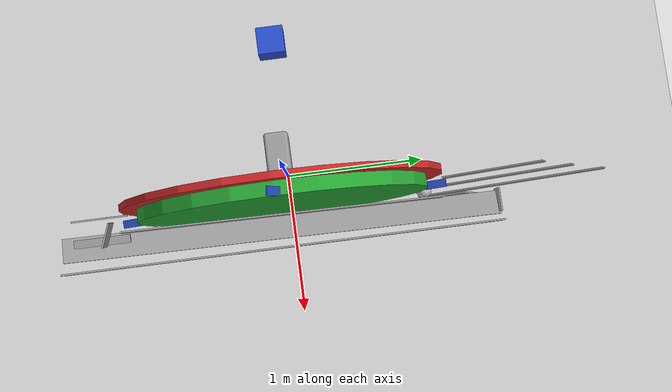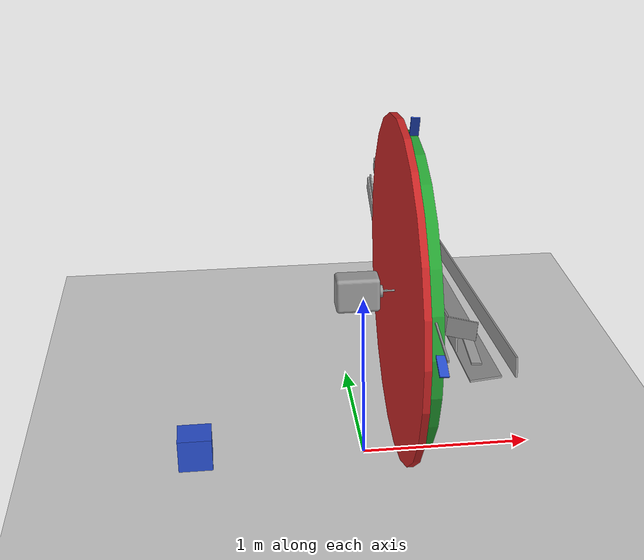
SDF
<?xml version="1.0" ?>
<sdf version="1.5">
  <world name="default">

    <!-- A global light source -->
    <include>
      <uri>model://sun</uri>
    </include>

    <!-- A ground plane -->
    <include>
      <uri>model://ground_plane</uri>
    </include>

    <include>
      <pose>-0.03 0 1.05 0 0 0</pose>
      <uri>model://motor</uri>
    </include>

    <include>
      <uri>model://bucket_wheel</uri>
    </include>

    <include>
      <uri>model://wheel_ramps</uri>
    </include>

    <plugin name="scoring" filename="libScoringPlugin.so">

    <region>
      <name>rampRegion</name>
      <volume>
          <min>0.3 0.3 0.9</min>
          <max>0.5 0.5 1.1</max>
     </volume>
    </region>

    <!-- bounding box inclusion event -->

    <event>
      <name>ball1InRampRegion</name>
      <type>inclusion</type>
      <model>ball1</model>
      <region>rampRegion</region>
    </event>

    <event>
      <name>AllModels</name>
      <type>existence</type>
    </event>

    <event>
      <name>SimState</name>
      <type>sim_state</type>
    </event>

    </plugin>

    <model name="box_start">
      <pose>-1 0.0 0.1 0 0 0</pose>
      <link name="link">
        <collision name="collision">
          <geometry>
            <box>
              <size>0.2 0.2 0.2</size>
            </box>
          </geometry>
        </collision>
        <visual name="visual">
          <geometry>
            <box>
              <size>0.2 0.2 0.2</size>
            </box>
          </geometry>
          <material>
            <script>
              <uri>file://media/materials/scripts/gazebo.material</uri>
              <name>Gazebo/Blue</name>
            </script>
          </material>
        </visual>
      </link>
    </model>

    <model name="ball1">
      <pose>0.29 0.904939 0.760899 0 0 0</pose>
      <link name="link">
        <self_collide>true</self_collide>
        <inertial>
          <mass>0.01</mass>
          <inertia>
            <ixx>0.00005</ixx>
            <ixy>0.0</ixy>
            <ixz>0.0</ixz>
            <iyy>0.00005</iyy>
            <iyz>0.0</iyz>
            <izz>0.00005</izz>
          </inertia>
        </inertial>

        <collision name="collision">
          <geometry>
            <sphere>
              <radius>0.05</radius>
            </sphere>
          </geometry>
        </collision>
        <visual name="visual">
          <geometry>
            <sphere>
              <radius>0.05</radius>
            </sphere>
          </geometry>
        </visual>
      </link>
    </model>

  </world>
</sdf>

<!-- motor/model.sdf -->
<sdf version="1.5">
  <model name="motor">
    <pose>0 0 0.1 0 0 0</pose>
    <link name="link">
      <self_collide>false</self_collide>
      <collision name="collision">
        <pose>0 0 0.0 0 0 0</pose>
        <geometry>
          <mesh>
            <uri>model://motor/meshes/motor.dae</uri>
            <scale>0.01 0.01 0.01</scale>
          </mesh>
        </geometry>
      </collision>
      <visual name="visual">
        <pose>0 0 0.0 0 0 0</pose>
        <geometry>
          <mesh>
            <uri>model://motor/meshes/motor.dae</uri>
            <scale>0.01 0.01 0.01</scale>
          </mesh>
        </geometry>
        <material>
          <script>
            <uri>file://media/materials/scripts/gazebo.material</uri>
            <name>Gazebo/Grey</name>
          </script>
        </material>
      </visual>
    </link>

    <joint name="world_joint" type="revolute">
      <parent>world</parent>
      <child>link</child>
      <axis>
        <xyz>0 0 1</xyz>
        <limit>
          <lower>0</lower>
          <upper>0</upper>
        </limit>
      </axis>
    </joint>

    <link name="motor_core_link">
      <pose>0.02 0 0.0 0 1.57 0</pose>
      <self_collide>false</self_collide>
      <gravity>false</gravity>
      <collision name="collision">
        <pose>0 0 0.0 0 0 0</pose>
        <geometry>
          <cylinder>
            <radius>0.05</radius>
            <length>0.05</length>
          </cylinder>
        </geometry>
      </collision>
      <visual name="visual">
        <pose>0 0 0.0 0 0 0</pose>
        <geometry>
          <cylinder>
            <radius>0.05</radius>
            <length>0.05</length>
          </cylinder>
        </geometry>
        <material>
          <script>
            <uri>file://media/materials/scripts/gazebo.material</uri>
            <name>Gazebo/Grey</name>
          </script>
        </material>
      </visual>
    </link>

    <link name="motor_shaft_link">
      <pose>0.02 0 0.0 0 1.57 0</pose>
      <self_collide>false</self_collide>
      <gravity>false</gravity>
      <collision name="collision">
        <pose>0 0 0.0 0 0 0</pose>
        <geometry>
          <cylinder>
            <radius>0.005</radius>
            <length>0.30</length>
          </cylinder>
        </geometry>
      </collision>
      <visual name="visual">
        <pose>0 0 0.0 0 0 0</pose>
        <geometry>
          <cylinder>
            <radius>0.005</radius>
            <length>0.30</length>
          </cylinder>
        </geometry>
        <material>
          <script>
            <uri>file://media/materials/scripts/gazebo.material</uri>
            <name>Gazebo/Grey</name>
          </script>
        </material>
      </visual>
    </link>

    <joint name="motor_shaft_joint" type="revolute">
      <parent>motor_core_link</parent>
      <child>motor_shaft_link</child>
      <axis>
        <xyz>0 0 1</xyz>
        <limit>
          <lower>-1000000</lower>
          <upper>1000000</upper>
        </limit>
      </axis>
    </joint>

    <joint name="motor_joint" type="revolute">
      <parent>motor_core_link</parent>
      <child>link</child>
      <axis>
        <xyz>0 0 1</xyz>
        <limit>
          <lower>0</lower>
          <upper>0</upper>
        </limit>
      </axis>
    </joint>

    <plugin filename="libMotorPlugin.so" name="motor">
    <port>
      <name>shaft</name>
      <type>mechanical</type>
    </port>
    <port>
      <name>connector0</name>
      <type>electrical</type>
    </port>
    <port>
      <name>connector1</name>
      <type>electrical</type>
    </port>

    <properties>
      <resistance>5</resistance>
      <back_emf>0.0064</back_emf>
      <torque_constant>0.0064</torque_constant>
    </properties>

    <shaft_joint>motor_shaft_joint</shaft_joint>
  </plugin>

  </model>
</sdf>

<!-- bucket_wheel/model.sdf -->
<sdf version="1.5">
  <model name="bucket_wheel">
    <link name="link">
      <pose>0.2 0 1.05 0 1.5707 0</pose>
      <inertial>
        <pose>0 0 0.025 0 0 0</pose>
        <mass>1.0</mass>
        <inertia>
          <ixx>0.2509</ixx>
          <ixy>0.0</ixy>
          <ixz>0.0</ixz>
          <iyy>0.2509</iyy>
          <iyz>0.0</iyz>
          <izz>0.5</izz>
        </inertia>
      </inertial>

      <collision name="collision_wheel">
        <geometry>
          <cylinder>
            <radius>1.0</radius>
            <length>0.04</length>
          </cylinder>
        </geometry>
      </collision>
      <visual name="visual_wheel">
        <geometry>
          <cylinder>
            <radius>1.0</radius>
            <length>0.04</length>
          </cylinder>
        </geometry>
        <material>
          <script>
            <uri>file://media/materials/scripts/gazebo.material</uri>
            <name>Gazebo/Red</name>
          </script>
        </material>
      </visual>

      <collision name="collision_inner_wheel">
        <pose>0 0 0.05 0 0 0</pose>
        <geometry>
          <cylinder>
            <radius>0.9</radius>
            <length>0.1</length>
          </cylinder>
        </geometry>
      </collision>
      <visual name="visual_inner_wheel">
        <pose>0 0 0.05 0 0 0</pose>
        <geometry>
          <cylinder>
            <radius>0.9</radius>
            <length>0.1</length>
          </cylinder>
        </geometry>
        <material>
          <script>
            <uri>file://media/materials/scripts/gazebo.material</uri>
            <name>Gazebo/Green</name>
          </script>
        </material>
      </visual>

      <collision name="collision_spoke1">
        <pose>0.95 0 0.08 -0.1 0 0.45</pose>
        <geometry>
          <box>
            <size>0.14 0.01 0.05</size>
          </box>
        </geometry>
      </collision>
      <visual name="visual_spoke1">
        <pose>0.95 0 0.08 -0.1 0 0.45</pose>
        <geometry>
          <box>
            <size>0.14 0.01 0.05</size>
          </box>
        </geometry>
        <material>
          <script>
            <uri>file://media/materials/scripts/gazebo.material</uri>
            <name>Gazebo/Blue</name>
          </script>
        </material>
      </visual>

      <collision name="collision_spoke2">
        <pose>-0.95 0 0.08 0.1 0 0.45</pose>
        <geometry>
          <box>
            <size>0.14 0.01 0.05</size>
          </box>
        </geometry>
      </collision>
      <visual name="visual_spoke2">
        <pose>-0.95 0 0.08 0.1 0 0.45</pose>
        <geometry>
          <box>
            <size>0.14 0.01 0.05</size>
          </box>
        </geometry>
        <material>
          <script>
            <uri>file://media/materials/scripts/gazebo.material</uri>
            <name>Gazebo/Blue</name>
          </script>
        </material>
      </visual>

      <collision name="collision_spoke3">
        <pose>0 0.95 0.08 -0.1 0 2.0207</pose>
        <geometry>
          <box>
            <size>0.14 0.01 0.05</size>
          </box>
        </geometry>
      </collision>
      <visual name="visual_spoke3">
        <pose>0 0.95 0.08 -0.1 0 2.0207</pose>
        <geometry>
          <box>
            <size>0.14 0.01 0.05</size>
          </box>
        </geometry>
        <material>
          <script>
            <uri>file://media/materials/scripts/gazebo.material</uri>
            <name>Gazebo/Blue</name>
          </script>
        </material>
      </visual>

      <collision name="collision_spoke4">
        <pose>0 -0.95 0.08 0.1 0 2.0207</pose>
        <geometry>
          <box>
            <size>0.14 0.01 0.05</size>
          </box>
        </geometry>
      </collision>
      <visual name="visual_spoke4">
        <pose>0 -0.95 0.08 0.1 0 2.0207</pose>
        <geometry>
          <box>
            <size>0.14 0.01 0.05</size>
          </box>
        </geometry>
        <material>
          <script>
            <uri>file://media/materials/scripts/gazebo.material</uri>
            <name>Gazebo/Blue</name>
          </script>
        </material>
      </visual>
    </link>

    <joint name="world_joint" type="revolute">
      <parent>world</parent>
      <child>link</child>
      <axis>
        <xyz>0 0 1</xyz>
        <limit>
          <lower>-1000000</lower>
          <upper>1000000</upper>
        </limit>
      </axis>
    </joint>

    <plugin filename="libWheelPlugin.so" name="wheel">
      <shaft_link>motor::motor_shaft_link</shaft_link>
      <body_link>bucket_wheel::link</body_link>
    </plugin>

  </model>
</sdf>

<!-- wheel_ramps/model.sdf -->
<sdf version="1.5">
  <model name="ramps">
    <pose>0 0 1.05 0 0 0</pose>
    <static>true</static>

    <link name="link">
      <collision name="collision_top_ramp1">
        <pose>0.245 -1.1 0.21 0.1 0.1 0</pose>
        <geometry>
          <box>
            <size>0.01 0.35 0.01</size>
          </box>
        </geometry>
      </collision>
      <visual name="visual_top_ramp1">
        <pose>0.245 -1.1 0.21 0.1 0.1 0</pose>
        <geometry>
          <box>
            <size>0.01 0.35 0.01</size>
          </box>
        </geometry>
        <material>
          <script>
            <uri>file://media/materials/scripts/gazebo.material</uri>
            <name>Gazebo/Grey</name>
          </script>
        </material>
      </visual>

      <collision name="collision_top_ramp">
        <pose>0.38 -1.1 0.19 0.1 0.1 0</pose>
        <geometry>
          <box>
            <size>0.05 0.35 0.01</size>
          </box>
        </geometry>
      </collision>
      <visual name="visual_top_ramp">
        <pose>0.38 -1.1 0.19 0.1 0.1 0</pose>
        <geometry>
          <box>
            <size>0.05 0.35 0.01</size>
          </box>
        </geometry>
        <material>
          <script>
            <uri>file://media/materials/scripts/gazebo.material</uri>
            <name>Gazebo/Grey</name>
          </script>
        </material>
      </visual>

      <collision name="collision_turn1_barrier">
        <pose>0.35 -1.05 0.25 .1 0 1.2</pose>
        <geometry>
          <box>
            <size>0.01 0.15 0.1</size>
          </box>
        </geometry>
      </collision>
      <visual name="visual_turn_barrier">
        <pose>0.35 -1.05 0.25 .1 0 1.2</pose>
        <geometry>
          <box>
            <size>0.01 0.15 0.1</size>
          </box>
        </geometry>
        <material>
          <script>
            <uri>file://media/materials/scripts/gazebo.material</uri>
            <name>Gazebo/Grey</name>
          </script>
        </material>
      </visual>

      <collision name="collision_ramp_back">
        <pose>0.42 0.0 -0.0 -0.1 -0.1 0</pose>
        <geometry>
          <box>
            <size>0.15 2.73 0.01</size>
          </box>
        </geometry>
      </collision>
      <visual name="visual_ramp_back">
        <pose>0.42 0.0 -0.0 -0.1 -0.1 0</pose>
        <geometry>
          <box>
            <size>0.15 2.73 0.01</size>
          </box>
        </geometry>
        <material>
          <script>
            <uri>file://media/materials/scripts/gazebo.material</uri>
            <name>Gazebo/Grey</name>
          </script>
        </material>
      </visual>
      <collision name="collision_ramp_back_wall">
        <pose>0.55 0 0.05 -0.1 0 0</pose>
        <geometry>
          <box>
            <size>0.01 2.73 0.1</size>
          </box>
        </geometry>
      </collision>
      <visual name="visual_ramp_back_wall">
        <pose>0.55 0 0.05 -0.1 0 0</pose>
        <geometry>
          <box>
            <size>0.01 2.73 0.1</size>
          </box>
        </geometry>
        <material>
          <script>
            <uri>file://media/materials/scripts/gazebo.material</uri>
            <name>Gazebo/Grey</name>
          </script>
        </material>
      </visual>

      <collision name="collision_ramp_back_wall2">
        <pose>0.348 0 0.05 -0.1 0 -0.01</pose>
        <geometry>
          <box>
            <size>0.01 2.0 0.1</size>
          </box>
        </geometry>
      </collision>
      <visual name="visual_ramp_back_wall2">
        <pose>0.348 0 0.05 -0.1 0 -0.01</pose>
        <geometry>
          <box>
            <size>0.01 2.0 0.1</size>
          </box>
        </geometry>
        <material>
          <script>
            <uri>file://media/materials/scripts/gazebo.material</uri>
            <name>Gazebo/Grey</name>
          </script>
        </material>
      </visual>

      <collision name="collision_turn2_barrier">
        <pose>0.42 1.35 -0.12 -0.1 0 0</pose>
        <geometry>
          <box>
            <size>0.15 0.01 0.1</size>
          </box>
        </geometry>
      </collision>
      <visual name="visual_turn2_barrier">
        <pose>0.42 1.35 -0.12 -0.1 0 0</pose>
        <geometry>
          <box>
            <size>0.15 0.01 0.1</size>
          </box>
        </geometry>
        <material>
          <script>
            <uri>file://media/materials/scripts/gazebo.material</uri>
            <name>Gazebo/Grey</name>
          </script>
        </material>
      </visual>

      <collision name="collision_feeder_guide">
        <pose>0.352 1.05 -0.2 0.45 0 0</pose>
        <geometry>
          <box>
            <size>0.01 0.3 0.3</size>
          </box>
        </geometry>
        <surface>
          <friction>
            <ode>
              <mu>0</mu>
              <mu2>0</mu2>
            </ode>
          </friction>
        </surface>
      </collision>
      <visual name="visual_feeder_guide">
        <pose>0.352 1.05 -0.2 0.45 0 0</pose>
        <geometry>
          <box>
            <size>0.01 0.3 0.3</size>
          </box>
        </geometry>
        <material>
          <script>
            <uri>file://media/materials/scripts/gazebo.material</uri>
            <name>Gazebo/Grey</name>
          </script>
        </material>
      </visual>

      <collision name="collision_feeder_turn">
        <pose>0.23 1.33 -0.05 0.45 0 0</pose>
        <geometry>
          <box>
            <size>0.01 0.65 0.1</size>
          </box>
        </geometry>
        <surface>
          <friction>
            <ode>
              <mu>0</mu>
              <mu2>0</mu2>
            </ode>
          </friction>
        </surface>

      </collision>
      <visual name="visual_feeder_turn">
        <pose>0.23 1.33 -0.05 0.45 0 0</pose>
        <geometry>
          <box>
            <size>0.01 0.65 0.1</size>
          </box>
        </geometry>
        <material>
          <script>
            <uri>file://media/materials/scripts/gazebo.material</uri>
            <name>Gazebo/Grey</name>
          </script>
        </material>
      </visual>

      <collision name="collision_feeder_wall">
        <pose>0.27 1.4 -0.15 0.45 0 0</pose>
        <geometry>
          <box>
            <size>0.01 0.905 0.1</size>
          </box>
        </geometry>
      </collision>
      <visual name="visual_feeder_wall">
        <pose>0.27 1.4 -0.15 0.45 0 0</pose>
        <geometry>
          <box>
            <size>0.01 0.905 0.1</size>
          </box>
        </geometry>
        <material>
          <script>
            <uri>file://media/materials/scripts/gazebo.material</uri>
            <name>Gazebo/Grey</name>
          </script>
        </material>
      </visual>

      <collision name="collision_feeder_wall2">
        <pose>0.32 1.435 -0.15 0.45 0 0</pose>
        <geometry>
          <box>
            <size>0.01 1.2 0.1</size>
          </box>
        </geometry>
      </collision>
      <visual name="visual_feeder_wall2">
        <pose>0.32 1.435 -0.15 0.45 0 0</pose>
        <geometry>
          <box>
            <size>0.01 1.2 0.1</size>
          </box>
        </geometry>
        <material>
          <script>
            <uri>file://media/materials/scripts/gazebo.material</uri>
            <name>Gazebo/Grey</name>
          </script>
        </material>
      </visual>
    </link>
  </model>

</sdf>
